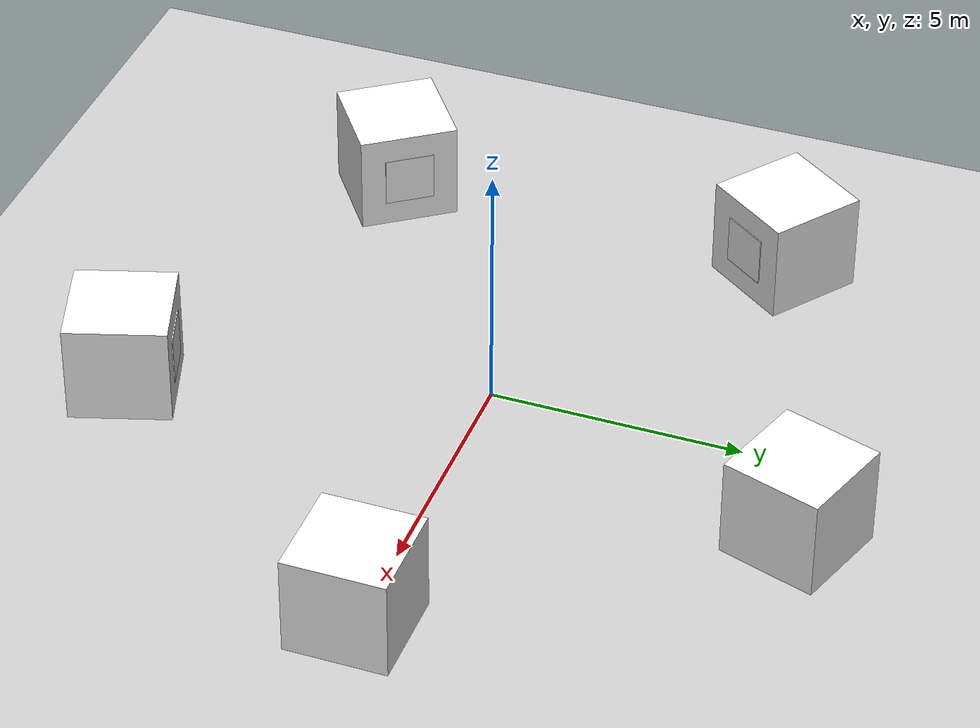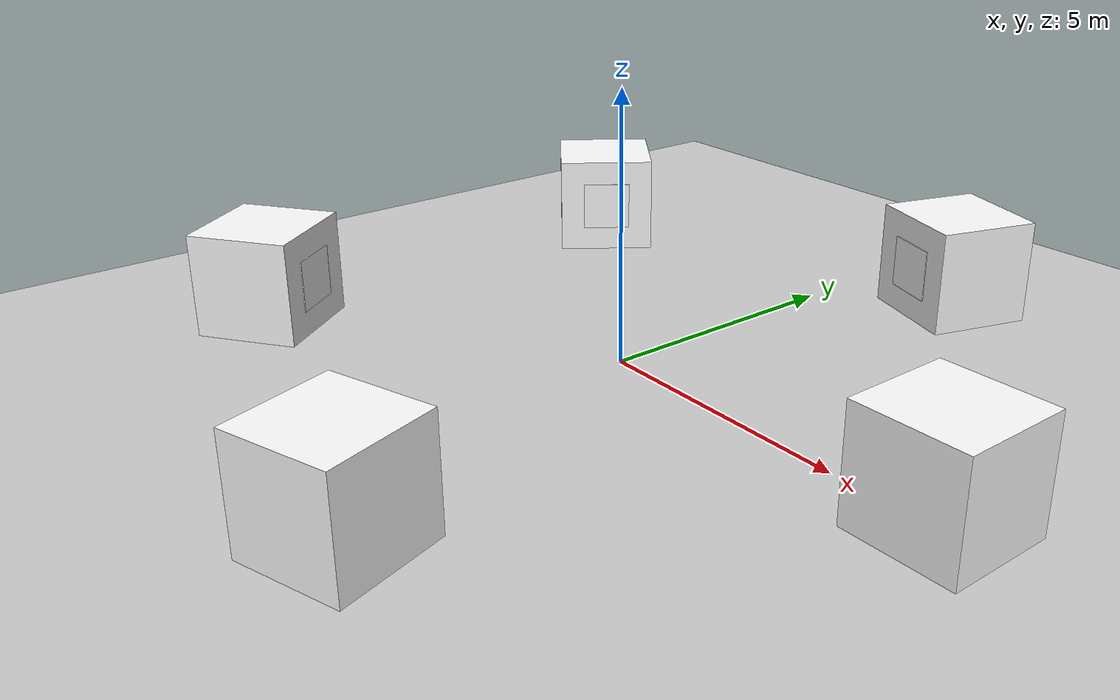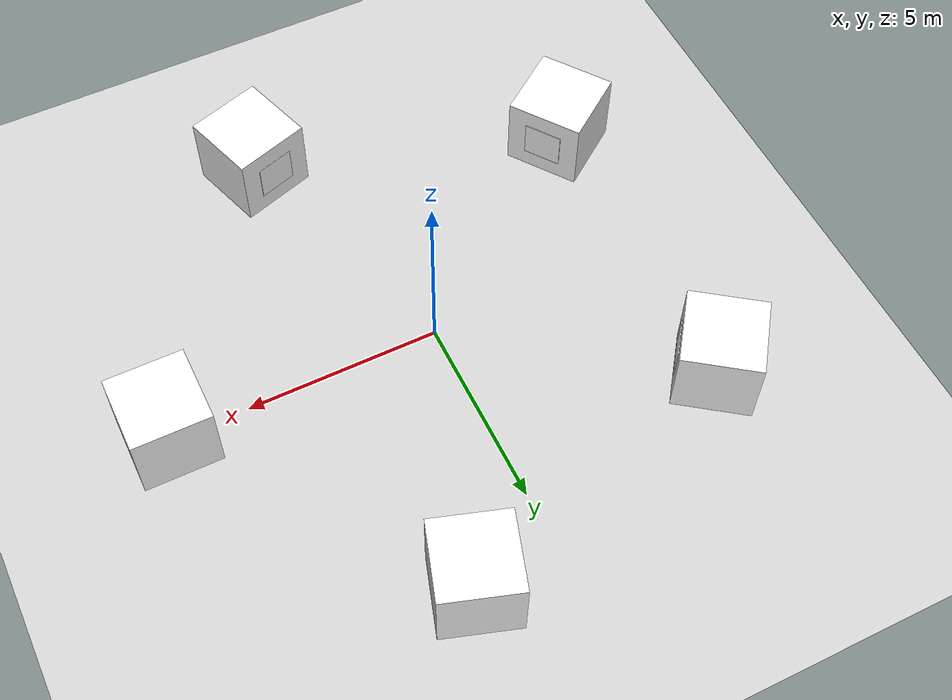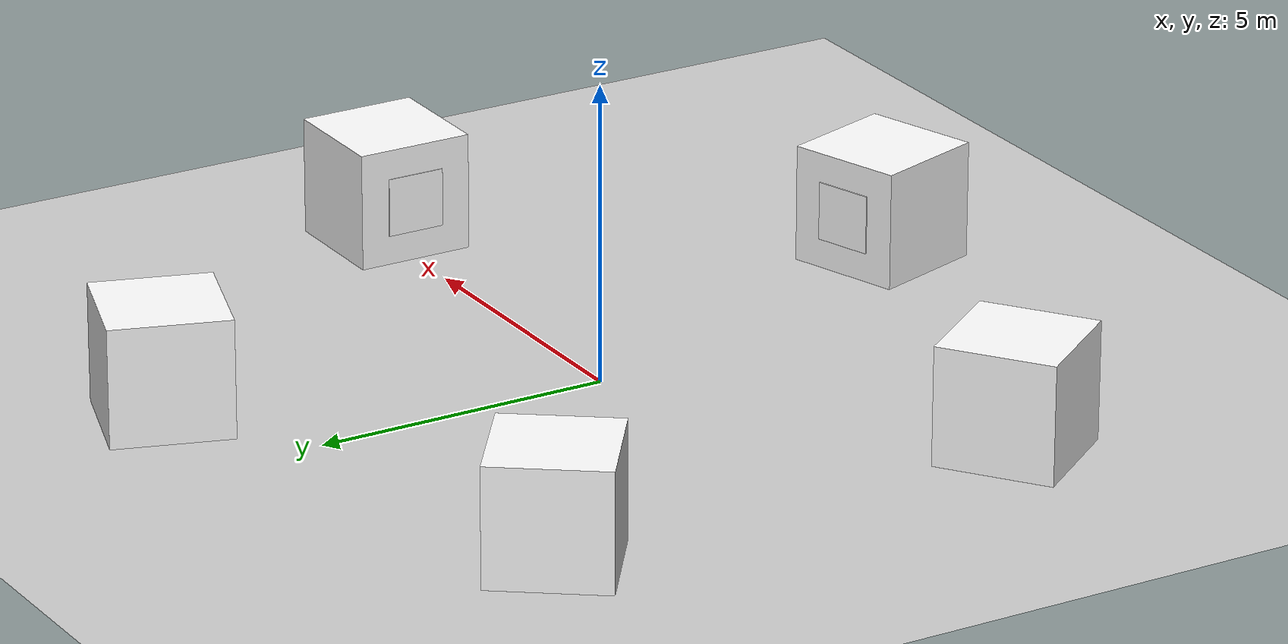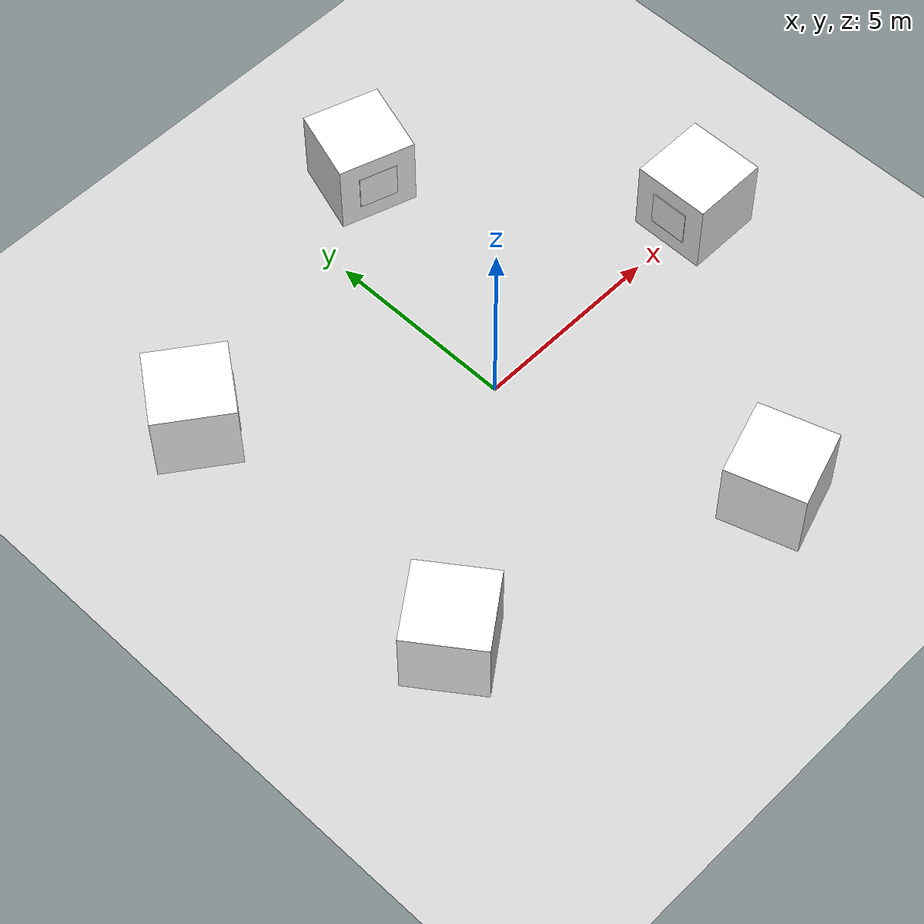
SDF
<?xml version="1.0" ?>
<sdf version="1.6">
  <world name="aruco_world">
    <physics name="1ms" type="ignored">
      <max_step_size>0.001</max_step_size>
      <real_time_factor>1.0</real_time_factor>
    </physics>
    <plugin
      filename="gz-sim-physics-system"
      name="gz::sim::systems::Physics">
    </plugin>
    <plugin
      filename="gz-sim-user-commands-system"
      name="gz::sim::systems::UserCommands">
    </plugin>
    <plugin
      filename="gz-sim-scene-broadcaster-system"
      name="gz::sim::systems::SceneBroadcaster">
    </plugin>

    <light type="directional" name="sun">
      <cast_shadows>true</cast_shadows>
      <pose>0 0 10 0 0 0</pose>
      <diffuse>0.8 0.8 0.8 1</diffuse>
      <specular>0.2 0.2 0.2 1</specular>
      <attenuation>
        <range>1000</range>
        <constant>0.9</constant>
        <linear>0.01</linear>
        <quadratic>0.001</quadratic>
      </attenuation>
      <direction>-0.5 0.1 -0.9</direction>
    </light>

    <model name="ground_plane">
      <static>true</static>
      <link name="link">
        <collision name="collision">
          <geometry><plane><normal>0 0 1</normal><size>100 100</size></plane></geometry>
        </collision>
        <visual name="visual">
          <geometry><plane><normal>0 0 1</normal><size>100 100</size></plane></geometry>
          <material>
            <ambient>0.8 0.8 0.8 1</ambient>
            <diffuse>0.8 0.8 0.8 1</diffuse>
          </material>
        </visual>
      </link>
    </model>

    <model name="box_marker_0">
      <pose>7.0 0.0 1.0 0 0 3.1415</pose>
      <link name="box_link">
        <inertial>
          <mass>10.0</mass>
          <inertia> <ixx>1.66</ixx><ixy>0</ixy><ixz>0</ixz>
            <iyy>1.66</iyy><iyz>0</iyz>
            <izz>1.66</izz>
          </inertia>
        </inertial>
        <visual name="visual">
          <geometry><box><size>2.0 2.0 2.0</size></box></geometry>
          <material><ambient>1 1 1 1</ambient><diffuse>1 1 1 1</diffuse></material>
        </visual>
        <collision name="collision">
          <geometry><box><size>2.0 2.0 2.0</size></box></geometry>
        </collision>
      </link>
      <include>
        <uri>model://aruco_marker_0</uri>
        <name>marker_0</name>
        <pose>1.01 0 0 3.14159 1.5707 0</pose>
      </include>
      <joint name="joint_0" type="fixed">
        <parent>box_link</parent>
        <child>marker_0::link</child>
      </joint>
    </model>

    <model name="box_marker_1">
      <pose>2.163 6.657 1.0 0 0 4.398</pose>
      <link name="box_link">
        <inertial>
          <mass>10.0</mass>
          <inertia>
            <ixx>1.66</ixx><ixy>0</ixy><ixz>0</ixz>
            <iyy>1.66</iyy><iyz>0</iyz>
            <izz>1.66</izz>
          </inertia>
        </inertial>
        <visual name="visual">
          <geometry><box><size>2.0 2.0 2.0</size></box></geometry>
          <material><ambient>1 1 1 1</ambient><diffuse>1 1 1 1</diffuse></material>
        </visual>
        <collision name="collision">
          <geometry><box><size>2.0 2.0 2.0</size></box></geometry>
        </collision>
      </link>
      <include>
        <uri>model://aruco_marker_1</uri>
        <name>marker_1</name>
        <pose>1.01 0 0 3.14159 1.5707 0</pose>
      </include>
      <joint name="joint_1" type="fixed">
        <parent>box_link</parent>
        <child>marker_1::link</child>
      </joint>
    </model>

    <model name="box_marker_2">
      <pose>-5.663 4.114 1.0 0 0 5.654</pose>
      <link name="box_link">
        <inertial>
          <mass>10.0</mass>
          <inertia>
            <ixx>1.66</ixx><ixy>0</ixy><ixz>0</ixz>
            <iyy>1.66</iyy><iyz>0</iyz>
            <izz>1.66</izz>
          </inertia>
        </inertial>
        <visual name="visual">
          <geometry><box><size>2.0 2.0 2.0</size></box></geometry>
          <material><ambient>1 1 1 1</ambient><diffuse>1 1 1 1</diffuse></material>
        </visual>
        <collision name="collision">
          <geometry><box><size>2.0 2.0 2.0</size></box></geometry>
        </collision>
      </link>
      <include>
        <uri>model://aruco_marker_2</uri>
        <name>marker_2</name>
        <pose>1.01 0 0 3.14159 1.5707 0</pose>
      </include>
      <joint name="joint_2" type="fixed">
        <parent>box_link</parent>
        <child>marker_2::link</child>
      </joint>
    </model>

    <model name="box_marker_3">
      <pose>-5.663 -4.114 1.0 0 0 0.628</pose>
      <link name="box_link">
        <inertial>
          <mass>10.0</mass>
          <inertia>
            <ixx>1.66</ixx><ixy>0</ixy><ixz>0</ixz>
            <iyy>1.66</iyy><iyz>0</iyz>
            <izz>1.66</izz>
          </inertia>
        </inertial>
        <visual name="visual">
          <geometry><box><size>2.0 2.0 2.0</size></box></geometry>
          <material><ambient>1 1 1 1</ambient><diffuse>1 1 1 1</diffuse></material>
        </visual>
        <collision name="collision">
          <geometry><box><size>2.0 2.0 2.0</size></box></geometry>
        </collision>
      </link>
      <include>
        <uri>model://aruco_marker_3</uri>
        <name>marker_3</name>
        <pose>1.01 0 0 3.14159 1.5707 0</pose>
      </include>
      <joint name="joint_3" type="fixed">
        <parent>box_link</parent>
        <child>marker_3::link</child>
      </joint>
    </model>

    <model name="box_marker_4">
      <pose>2.163 -6.657 1.0 0 0 1.884</pose>
      <link name="box_link">
        <inertial>
          <mass>10.0</mass>
          <inertia>
            <ixx>1.66</ixx><ixy>0</ixy><ixz>0</ixz>
            <iyy>1.66</iyy><iyz>0</iyz>
            <izz>1.66</izz>
          </inertia>
        </inertial>
        <visual name="visual">
          <geometry><box><size>2.0 2.0 2.0</size></box></geometry>
          <material><ambient>1 1 1 1</ambient><diffuse>1 1 1 1</diffuse></material>
        </visual>
        <collision name="collision">
          <geometry><box><size>2.0 2.0 2.0</size></box></geometry>
        </collision>
      </link>
      <include>
        <uri>model://aruco_marker_4</uri>
        <name>marker_4</name>
        <pose>1.01 0 0 3.14159 1.5707 0</pose>
      </include>
      <joint name="joint_4" type="fixed">
        <parent>box_link</parent>
        <child>marker_4::link</child>
      </joint>
    </model>

  </world>
</sdf>

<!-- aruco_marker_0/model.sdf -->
<sdf version="1.6">
  <model name="aruco_marker_0">
    <static>true</static>
    <link name="link">
      <visual name="visual">
        <geometry>
          <box>
            <size>1.0 1.0 0.02</size> </box>
        </geometry>
        <material>
          <diffuse>1.0 1.0 1.0 1.0</diffuse> <pbr>
            <metal>
              <albedo_map>../textures/marker_0.png</albedo_map>
            </metal>
          </pbr>
        </material>
      </visual>
      <collision name="collision">
        <geometry>
          <box>
            <size>1.0 1.0 0.02</size>
          </box>
        </geometry>
      </collision>
    </link>
  </model>
</sdf>

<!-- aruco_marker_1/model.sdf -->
<sdf version="1.6">
  <model name="aruco_marker_1">
    <static>true</static>
    <link name="link">
      <visual name="visual">
        <geometry>
          <box>
            <size>1.0 1.0 0.02</size> </box>
        </geometry>
        <material>
          <diffuse>1.0 1.0 1.0 1.0</diffuse> <pbr>
            <metal>
              <albedo_map>../textures/marker_1.png</albedo_map>
            </metal>
          </pbr>
        </material>
      </visual>
      <collision name="collision">
        <geometry>
          <box>
            <size>1.0 1.0 0.02</size>
          </box>
        </geometry>
      </collision>
    </link>
  </model>
</sdf>

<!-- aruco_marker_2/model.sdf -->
<sdf version="1.6">
  <model name="aruco_marker_2">
    <static>true</static>
    <link name="link">
      <visual name="visual">
        <geometry>
          <box>
            <size>1.0 1.0 0.02</size> </box>
        </geometry>
        <material>
          <diffuse>1.0 1.0 1.0 1.0</diffuse> <pbr>
            <metal>
              <albedo_map>../textures/marker_2.png</albedo_map>
            </metal>
          </pbr>
        </material>
      </visual>
      <collision name="collision">
        <geometry>
          <box>
            <size>1.0 1.0 0.02</size>
          </box>
        </geometry>
      </collision>
    </link>
  </model>
</sdf>

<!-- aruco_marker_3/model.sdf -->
<sdf version="1.6">
  <model name="aruco_marker_3">
    <static>true</static>
    <link name="link">
      <visual name="visual">
        <geometry>
          <box>
            <size>1.0 1.0 0.02</size> </box>
        </geometry>
        <material>
          <diffuse>1.0 1.0 1.0 1.0</diffuse> <pbr>
            <metal>
              <albedo_map>../textures/marker_3.png</albedo_map>
            </metal>
          </pbr>
        </material>
      </visual>
      <collision name="collision">
        <geometry>
          <box>
            <size>1.0 1.0 0.02</size>
          </box>
        </geometry>
      </collision>
    </link>
  </model>
</sdf>

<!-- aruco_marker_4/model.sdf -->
<sdf version="1.6">
  <model name="aruco_marker_4">
    <static>true</static>
    <link name="link">
      <visual name="visual">
        <geometry>
          <box>
            <size>1.0 1.0 0.02</size> </box>
        </geometry>
        <material>
          <diffuse>1.0 1.0 1.0 1.0</diffuse> <pbr>
            <metal>
              <albedo_map>../textures/marker_4.png</albedo_map>
            </metal>
          </pbr>
        </material>
      </visual>
      <collision name="collision">
        <geometry>
          <box>
            <size>1.0 1.0 0.02</size>
          </box>
        </geometry>
      </collision>
    </link>
  </model>
</sdf>
